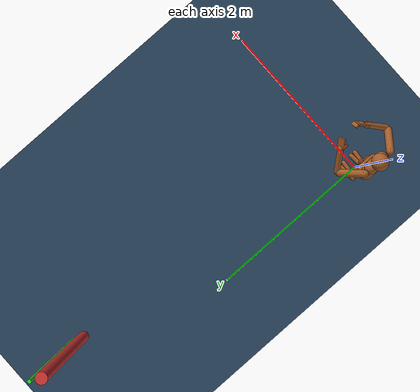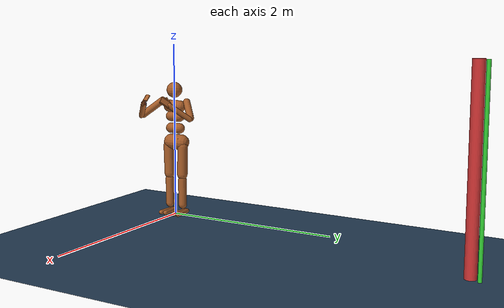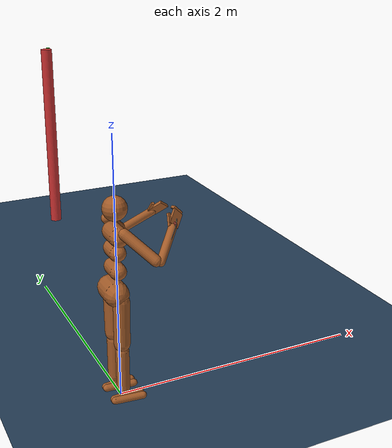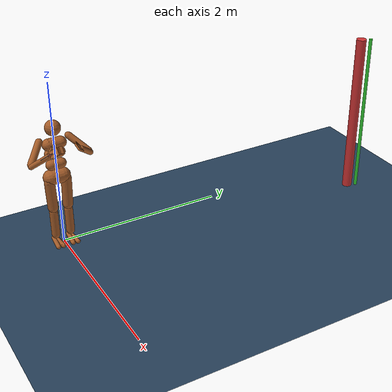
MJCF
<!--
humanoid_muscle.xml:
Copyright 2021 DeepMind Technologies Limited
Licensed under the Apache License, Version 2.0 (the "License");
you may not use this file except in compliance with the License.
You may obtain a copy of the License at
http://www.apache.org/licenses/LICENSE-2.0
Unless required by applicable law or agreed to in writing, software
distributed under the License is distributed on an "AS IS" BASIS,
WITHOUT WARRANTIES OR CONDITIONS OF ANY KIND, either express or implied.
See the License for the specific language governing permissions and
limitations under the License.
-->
<mujoco model="2-link arm position control">
  <option timestep="0.005" noslip_iterations="3"/>
  <include file="humanoid_muscle.xml"/>
  <worldbody>

    <body name="pass_body" pos="0.62 3.7 0">
      <geom density="3000" type="cylinder" fromto="0 0 0 0 0 2" size="0.06" rgba=".8 .2 .2 1"/>
      <joint type="slide" axis="0 1 0" limited="true" range="-100 0"/>
    </body>

    <body name="block_body"  pos="0.67 3.8 0">
      <geom density="900" type="cylinder" fromto="0 0 0 0 0 2" size="0.02" rgba=".2 .8 .2 1" friction="2"/>
      <joint type="slide" axis="0 1 0" limited="true" range="-100 0"/>
    </body>
  </worldbody>
  <keyframe>
    <key name="reach_imp" qpos="0 0 1.282
                            0 0 0 0
                            0 0 0
                            0 0 0 0 0 0
                            0 0 0 0 0 0
                            0.364 0.7 -1.7 0 0.75 -0.75 -1.4
                            0 0"/>
  </keyframe>

</mujoco>

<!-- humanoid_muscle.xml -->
<mujoco model="Humanoid">

  <visual>
    <map force="0.1" zfar="30"/>
    <rgba haze="0.15 0.25 0.35 1"/>
    <global offwidth="2560" offheight="1440" elevation="-20" azimuth="120"/>
  </visual>

  <statistic center="0 0 0.7"/>

  <asset>
    <texture type="skybox" builtin="gradient" rgb1=".3 .5 .7" rgb2="0 0 0" width="32" height="512"/>
    <texture name="body" type="cube" builtin="flat" mark="cross" width="127" height="1278" rgb1="0.8 0.6 0.4" rgb2="0.8 0.6 0.4" markrgb="1 1 1" random="0.01"/>
    <material name="body" texture="body" texuniform="true" rgba="0.8 0.6 .4 1"/>
    <texture name="grid" type="2d" builtin="checker" width="512" height="512" rgb1=".1 .2 .3" rgb2=".2 .3 .4"/>
    <material name="grid" texture="grid" texrepeat="1 1" texuniform="true" reflectance=".2"/>
  </asset>

  <default>
    <motor ctrlrange="-1 1" ctrllimited="true" group="5"/>
    <default class="body">
      <!-- geoms -->
      <geom type="capsule" condim="1" friction=".7" solimp=".9 .99 .003" solref=".015 1" material="body"/>
      <default class="thigh">
        <geom size=".06"/>
      </default>
      <default class="shin">
        <geom fromto="0 0 0 0 0 -.3"  size=".049"/>
      </default>
      <default class="foot">
        <geom size=".027"/>
        <default class="foot1">
          <geom fromto="-.07 -.01 0 .14 -.03 0"/>
        </default>
        <default class="foot2">
          <geom fromto="-.07 .01 0 .14  .03 0"/>
        </default>
      </default>
      <default class="arm_upper">
        <geom size=".04"/>
      </default>
      <default class="arm_lower">
        <geom size=".031"/>
      </default>
      <default class="hand">
        <geom type="box" size=".04 .01 .06"/>
      </default>

      <!-- joints -->
      <joint type="hinge" damping=".2" stiffness="1" armature=".01" limited="true" solimplimit="0 .99 .01"/>
      <default class="joint_big">
        <joint damping="5" stiffness="10"/>
        <default class="hip_x">
          <joint range="-30 10"/>
        </default>
        <default class="hip_z">
          <joint range="-60 35"/>
        </default>
        <default class="hip_y">
          <joint axis="0 1 0" range="-150 20"/>
        </default>
        <default class="joint_big_stiff">
          <joint stiffness="20"/>
        </default>
      </default>
      <default class="knee">
        <joint pos="0 0 .02" axis="0 -1 0" range="-160 2"/>
      </default>
      <default class="ankle">
        <joint range="-50 50"/>
        <default class="ankle_y">
          <joint pos="0 0 .08" axis="0 1 0" stiffness="6"/>
        </default>
        <default class="ankle_x">
          <joint pos="0 0 .04" stiffness="3"/>
        </default>
      </default>
      <default class="shoulder">
        <joint range="-85 60"/>
      </default>
      <default class="elbow">
        <joint range="-100 50" stiffness="0"/>
      </default>
    </default>
  </default>

  <worldbody>
    <geom name="floor" size="0 0 .05" type="plane" material="grid" condim="3"/>
    <light name="spotlight" mode="targetbodycom" target="torso" diffuse=".8 .8 .8" specular="0.3 0.3 0.3" pos="0 -6 4" cutoff="30"/>
    <body name="torso" pos="0 0 1.282" childclass="body">
      <light name="top" pos="0 0 2" mode="trackcom"/>
      <camera name="back" pos="-3 0 1" xyaxes="0 -1 0 1 0 2" mode="trackcom"/>
      <camera name="side" pos="0 -3 1" xyaxes="1 0 0 0 1 2" mode="trackcom"/>
      <freejoint name="root"/>
      <geom name="torso" fromto="0 -.07 0 0 .07 0" size=".07"/>
      <geom name="waist_upper" fromto="-.01 -.06 -.12 -.01 .06 -.12" size=".06"/>
      <body name="head" pos="0 0 .19">
        <geom name="head" type="sphere" size=".09"/>
        <camera name="egocentric" pos=".09 0 0" xyaxes="0 -1 0 .1 0 1" fovy="80"/>
      </body>
      <body name="waist_lower" pos="-.01 0 -.26">
        <geom name="waist_lower" fromto="0 -.06 0 0 .06 0" size=".06"/>
        <joint name="abdomen_z" pos="0 0 .065" axis="0 0 1" range="-45 45" class="joint_big_stiff"/>
        <joint name="abdomen_y" pos="0 0 .065" axis="0 1 0" range="-75 30" class="joint_big"/>
        <body name="pelvis" pos="0 0 -.165">
          <joint name="abdomen_x" pos="0 0 .1" axis="1 0 0" range="-35 35" class="joint_big"/>
          <geom name="butt" fromto="-.02 -.07 0 -.02 .07 0" size=".09"/>
          <body name="thigh_right" pos="0 -.1 -.04">
            <joint name="hip_x_right" axis="1 0 0" class="hip_x"/>
            <joint name="hip_z_right" axis="0 0 1" class="hip_z"/>
            <joint name="hip_y_right" class="hip_y"/>
            <geom name="thigh_right" fromto="0 0 0 0 .01 -.34" class="thigh"/>
            <body name="shin_right" pos="0 .01 -.4">
              <joint name="knee_right" class="knee"/>
              <geom name="shin_right" class="shin"/>
              <body name="foot_right" pos="0 0 -.39">
                <joint name="ankle_y_right" class="ankle_y"/>
                <joint name="ankle_x_right" class="ankle_x" axis="1 0 .5"/>
                <geom name="foot1_right" class="foot1"/>
                <geom name="foot2_right" class="foot2"/>
              </body>
            </body>
          </body>
          <body name="thigh_left" pos="0 .1 -.04">
            <joint name="hip_x_left" axis="-1 0 0" class="hip_x"/>
            <joint name="hip_z_left" axis="0 0 -1" class="hip_z"/>
            <joint name="hip_y_left" class="hip_y"/>
            <geom name="thigh_left" fromto="0 0 0 0 -.01 -.34" class="thigh"/>
            <body name="shin_left" pos="0 -.01 -.4">
              <joint name="knee_left" class="knee"/>
              <geom name="shin_left" fromto="0 0 0 0 0 -.3" class="shin"/>
              <body name="foot_left" pos="0 0 -.39">
                <joint name="ankle_y_left" class="ankle_y"/>
                <joint name="ankle_x_left" class="ankle_x" axis="-1 0 -.5"/>
                <geom name="foot1_left" class="foot1"/>
                <geom name="foot2_left" class="foot2"/>
              </body>
            </body>
          </body>
        </body>
      </body>
      <body name="upper_arm_right" pos="0 -.17 .06">
        <joint name="shoulder1_right" axis="2 1 1"  class="shoulder" damping="30"/>
        <joint name="shoulder2_right" axis="0 -1 1" class="shoulder" damping="30"/>
        <geom name="upper_arm_right" fromto="0 0 0 .16 -.16 -.16" class="arm_upper"/>
        <body name="lower_arm_right" pos=".18 -.18 -.18">
          <joint name="elbow_right" axis="0 -1 1" class="elbow"/>
          <geom name="lower_arm_right" fromto=".01 .01 .01 .17 .17 .17" class="arm_lower"/>
          <body name="origin1" zaxis="1 1 1" >
            <body name="origin2" euler="0 0 15">
              <site name="flex origin" pos="0 0.03 0.2"/>
              <site name="extend origin" pos="0 -0.03 0.2"/>
            </body>
          </body>

          <body name="hand_right" pos=".18 .18 .18"  zaxis="1 1 1" >
            <body name="rot" euler="0 0 15">
              <geom name="hand_right" pos="0 0 0.06" class="hand"/>
              <geom name="fingers"  type="box" size=".04 .01 .02" pos="0 0.02 0.14" class="hand" euler="-70 0 0"/>
              <geom name="thumb_right" pos="-0.05 0 0.02" type="box" size="0.01 0.009 0.045" euler="0 -30 0"/>
              <joint name="wrist_right" axis="1 0 0" range="-90 90" damping="0.05" stiffness="0.1"/>
              <site name="flex insertion" pos="0 0.015 0.05"/>
              <site name="fwr" pos="0 0.031 0" rgba="0 0 0 0"/>

              <geom type="cylinder" name="wrist wrapping" zaxis="1 0 0" size="0.03 0.01" rgba="0.9 0.2 0.4 0.3" />
              <site name="ewr" pos="0 -0.031 0" rgba="0 0 0 0"/>
              <site name="extend insertion" pos="0 -0.015 0.05"/>
            </body>
          </body>
        </body>
      </body>
      <body name="upper_arm_left" pos="0 .17 .06">
        <joint name="shoulder1_left" axis="-2 1 -1" class="shoulder"/>
        <joint name="shoulder2_left" axis="0 -1 -1"  class="shoulder"/>
        <geom name="upper_arm_left" fromto="0 0 0 .16 .16 -.16" class="arm_upper"/>
        <body name="lower_arm_left" pos=".18 .18 -.18">
          <joint name="elbow_left" axis="0 -1 -1" class="elbow"/>
          <geom name="lower_arm_left" fromto=".01 -.01 .01 .17 -.17 .17" class="arm_lower"/>
          <body name="hand_left" pos=".18 -.18 .18" zaxis="1 -1 1">
            <geom name="hand_left" pos="0 0 0.045" class="hand"/>
            <geom name="thumb_left" pos="-0.05 0 0.02" type="box" size="0.01 0.009 0.045" euler="0 -30 0"/>
          </body>
        </body>
      </body>
    </body>
  </worldbody>

  <contact>
    <exclude body1="waist_lower" body2="thigh_right"/>
    <exclude body1="waist_lower" body2="thigh_left"/>
  </contact>

  <tendon>
    <fixed name="hamstring_right" limited="true" range="-0.3 2">
      <joint joint="hip_y_right" coef=".5"/>
      <joint joint="knee_right" coef="-.5"/>
    </fixed>
    <fixed name="hamstring_left" limited="true" range="-0.3 2">
      <joint joint="hip_y_left" coef=".5"/>
      <joint joint="knee_left" coef="-.5"/>
    </fixed>
    <spatial name="flexor">
      <site site="flex origin"/>
      <site site="fwr"/>
      <geom geom="wrist wrapping" sidesite="fwr"/>
      <site site="flex insertion"/>
    </spatial>

     <spatial name="extensor">
      <site site="extend origin"/>
      <site site="ewr"/>
      <geom geom="wrist wrapping" sidesite="ewr"/>
      <site site="extend insertion"/>
    </spatial>
  </tendon>

  <actuator>
    <motor name="abdomen_y"       gear="40"  joint="abdomen_y"/>
    <motor name="abdomen_z"       gear="40"  joint="abdomen_z"/>
    <motor name="abdomen_x"       gear="40"  joint="abdomen_x"/>
    <motor name="hip_x_right"     gear="40"  joint="hip_x_right"/>
    <motor name="hip_z_right"     gear="40"  joint="hip_z_right"/>
    <motor name="hip_y_right"     gear="120" joint="hip_y_right"/>
    <motor name="knee_right"      gear="80"  joint="knee_right"/>
    <motor name="ankle_x_right"   gear="20"  joint="ankle_x_right"/>
    <motor name="ankle_y_right"   gear="20"  joint="ankle_y_right"/>
    <motor name="hip_x_left"      gear="40"  joint="hip_x_left"/>
    <motor name="hip_z_left"      gear="40"  joint="hip_z_left"/>
    <motor name="hip_y_left"      gear="120" joint="hip_y_left"/>
    <motor name="knee_left"       gear="80"  joint="knee_left"/>
    <motor name="ankle_x_left"    gear="20"  joint="ankle_x_left"/>
    <motor name="ankle_y_left"    gear="20"  joint="ankle_y_left"/>
    <motor name="shoulder1_right" gear="20"  joint="shoulder1_right"/>
    <motor name="shoulder2_right" gear="20"  joint="shoulder2_right"/>
    <motor name="elbow_right"     gear="40"  joint="elbow_right"/>
    <motor name="shoulder1_left"  gear="20"  joint="shoulder1_left"/>
    <motor name="shoulder2_left"  gear="20"  joint="shoulder2_left"/>
    <motor name="elbow_left"      gear="40"  joint="elbow_left"/>
    <muscle name="flexor"  ctrllimited="true" ctrlrange="0 500" tendon="flexor"/>
    <muscle name="coactivation" ctrllimited="true" ctrlrange="0 500" tendon="extensor" group="0"/>
  </actuator>

</mujoco>
